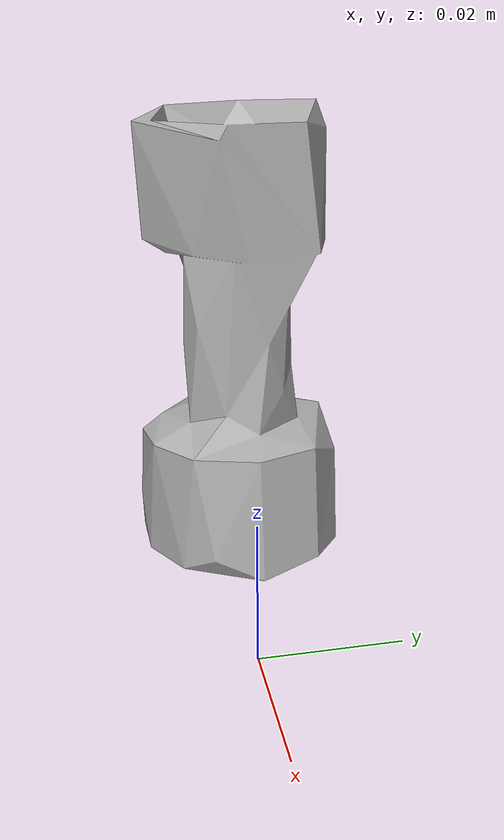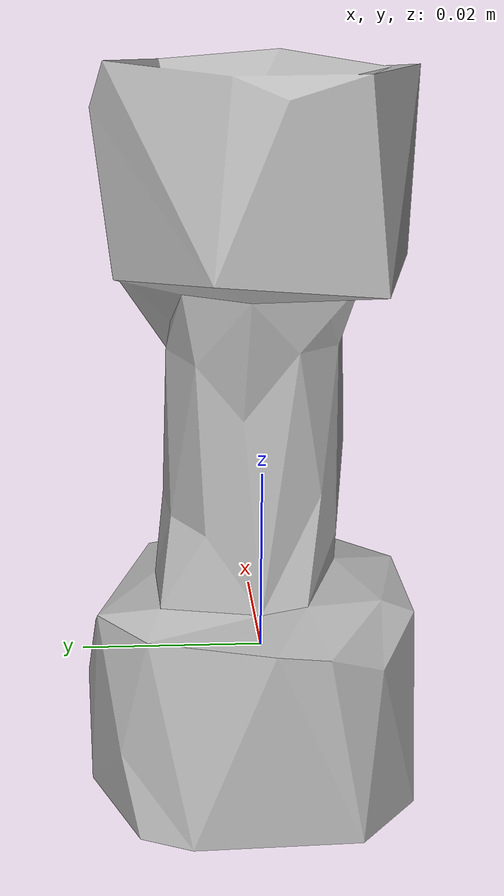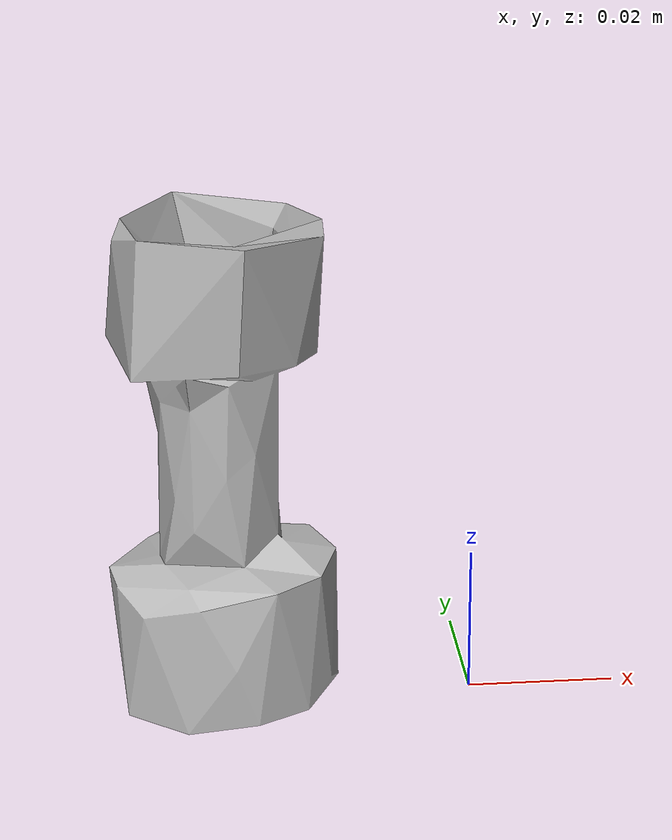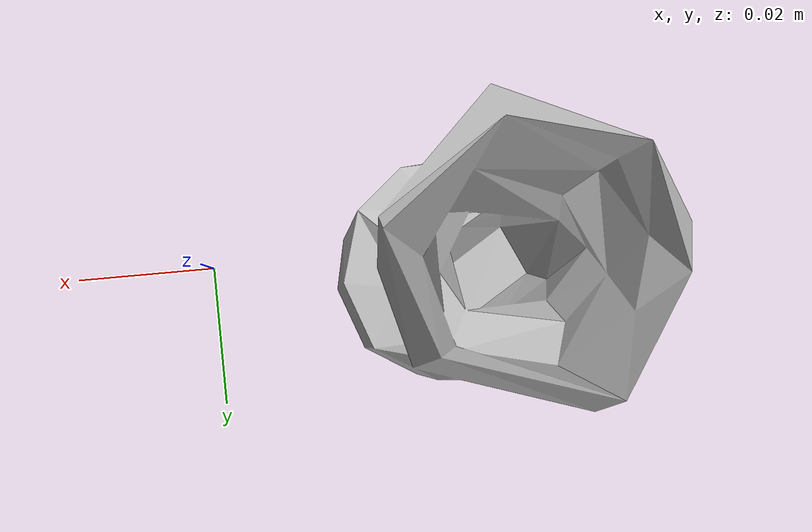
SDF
<?xml version='1.0'?>
<sdf version="1.4">
  <model name="072-c_toy_airplane">
    <static>false</static>
    <link name="link">
      <inertial>
        <pose>-0.033440209456180106 0.003410124560862682 0.031849540467166475 -0.004796375960268737 -0.007116809325328868 0.90072000394064</pose>
        <mass>0.004440602090154647</mass>
        <inertia>
          <ixx>1.8417040168838446e-06</ixx>
          <ixy>-2.9872019213675964e-22</ixy>
          <ixz>6.474924762937579e-22</ixz>
          <iyy>1.8393414593789427e-06</iyy>
          <iyz>3.5553259961820546e-22</iyz>
          <izz>4.753389670970991e-07</izz>
        </inertia>
      </inertial>
      <collision name="collision">
        <geometry>
          <mesh>
            <!-- Use a downsampled mesh for collisions -->
            <uri>model:///072-c_toy_airplane/072-c_toy_airplane_250_collision.stl</uri>
	        </mesh>
        </geometry>
        <surface>
      </surface>
      </collision>
      <visual name="visual">
        <geometry>
          <mesh>
            <uri>model:///072-c_toy_airplane/textured.obj</uri>
	        </mesh>
        </geometry>
        <material>
          <script>
            <uri>model:///072-c_toy_airplane/072-c_toy_airplane.material</uri>
            <name>072-c_toy_airplane</name>
          </script>
        </material>
      </visual>
    </link>
  </model>
</sdf>
